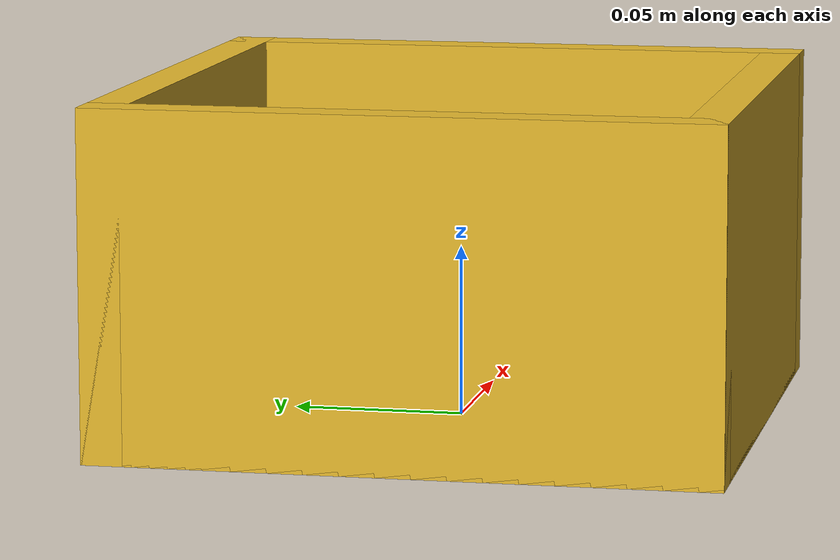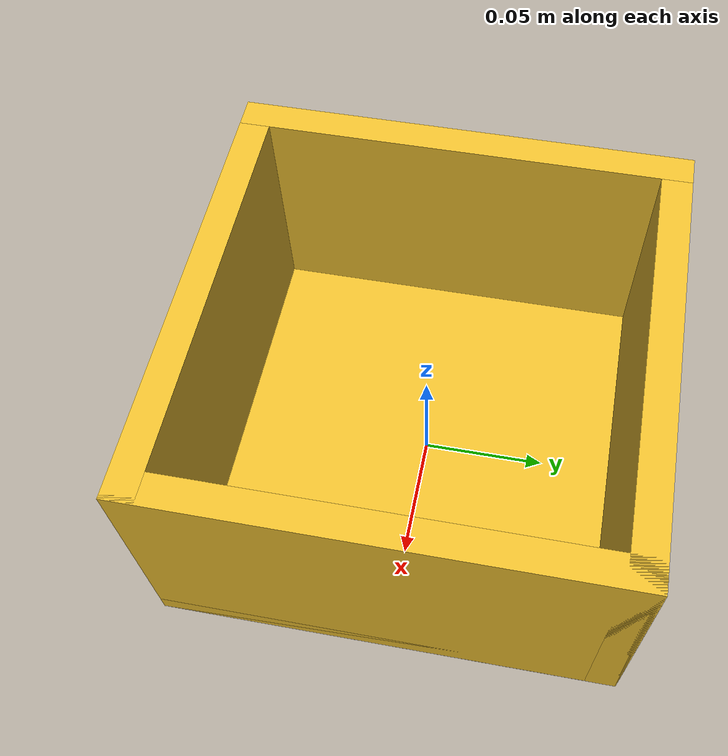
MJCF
<mujoco model="yellow_bin">
  <asset>
    <material name="yellow_bin_mat" rgba="0.92 0.74 0.18 1" specular="0.25" shininess="0.35" reflectance="0.08" />
  </asset>

  <worldbody>
    <body>
      <body name="object">
        <site type="box" pos="0 0 0.054" quat="1 0 0 0" size="0.078 0.078 0.042" group="0" rgba="0.8 0 0 0" name="contain_region" />
        <site type="box" pos="-0.020 -0.020 0.046" quat="1 0 0 0" size="0.050 0.050 0.012" group="0" rgba="0.2 0.8 0.2 0" name="preset_region" />

        <geom name="yellow_bin_bottom_visual" type="box" pos="0 0 0.004" size="0.090 0.090 0.004" material="yellow_bin_mat" contype="0" conaffinity="0" group="1" />
        <geom name="yellow_bin_wall_right_visual" type="box" pos="0.084 0 0.050" size="0.006 0.090 0.050" material="yellow_bin_mat" contype="0" conaffinity="0" group="1" />
        <geom name="yellow_bin_wall_left_visual" type="box" pos="-0.084 0 0.050" size="0.006 0.090 0.050" material="yellow_bin_mat" contype="0" conaffinity="0" group="1" />
        <geom name="yellow_bin_wall_front_visual" type="box" pos="0 0.084 0.050" size="0.090 0.006 0.050" material="yellow_bin_mat" contype="0" conaffinity="0" group="1" />
        <geom name="yellow_bin_wall_back_visual" type="box" pos="0 -0.084 0.050" size="0.090 0.006 0.050" material="yellow_bin_mat" contype="0" conaffinity="0" group="1" />

        <geom name="yellow_bin_bottom_collision" type="box" pos="0 0 0.004" size="0.090 0.090 0.004" group="0" density="120" friction="1.0 0.3 0.1" rgba="0.8 0.8 0.8 0.3" />
        <geom name="yellow_bin_wall_right_collision" type="box" pos="0.084 0 0.050" size="0.006 0.090 0.050" group="0" density="120" friction="1.0 0.3 0.1" rgba="0.8 0.8 0.8 0.3" />
        <geom name="yellow_bin_wall_left_collision" type="box" pos="-0.084 0 0.050" size="0.006 0.090 0.050" group="0" density="120" friction="1.0 0.3 0.1" rgba="0.8 0.8 0.8 0.3" />
        <geom name="yellow_bin_wall_front_collision" type="box" pos="0 0.084 0.050" size="0.090 0.006 0.050" group="0" density="120" friction="1.0 0.3 0.1" rgba="0.8 0.8 0.8 0.3" />
        <geom name="yellow_bin_wall_back_collision" type="box" pos="0 -0.084 0.050" size="0.090 0.006 0.050" group="0" density="120" friction="1.0 0.3 0.1" rgba="0.8 0.8 0.8 0.3" />
      </body>

      <site rgba="0 0 0 0" size="0.005" pos="0 0 -0.06" name="bottom_site" />
      <site rgba="0 0 0 0" size="0.005" pos="0 0 0.04" name="top_site" />
      <site rgba="0 0 0 0" size="0.005" pos="0.025 0.025 0" name="horizontal_radius_site" />
    </body>
  </worldbody>
</mujoco>
